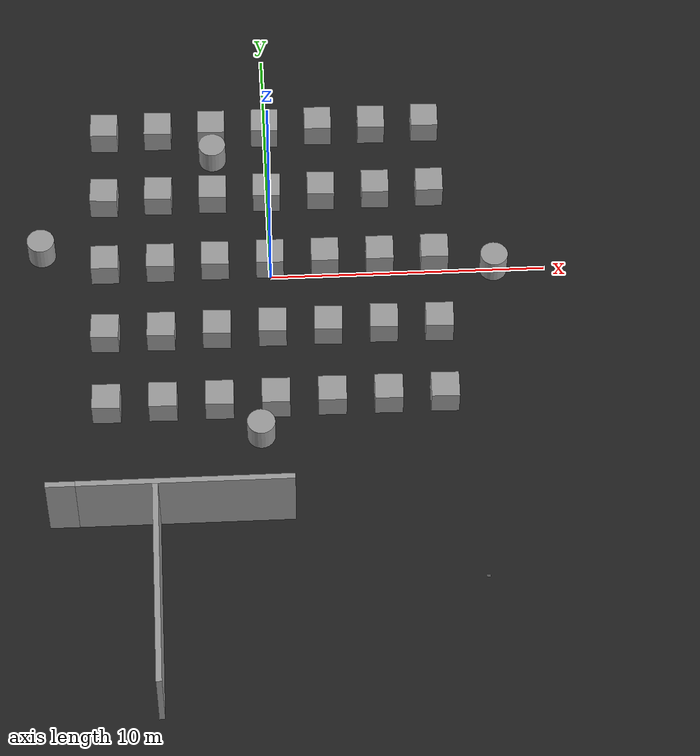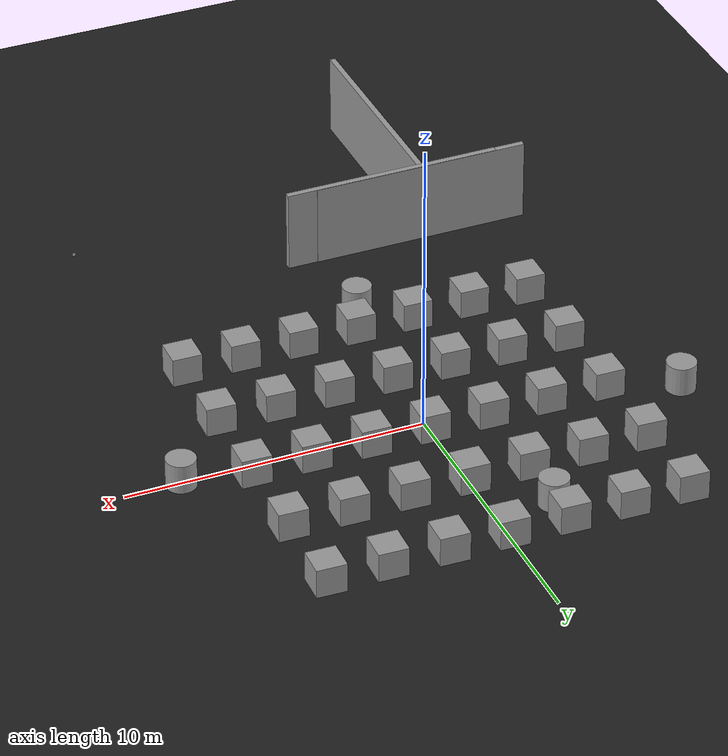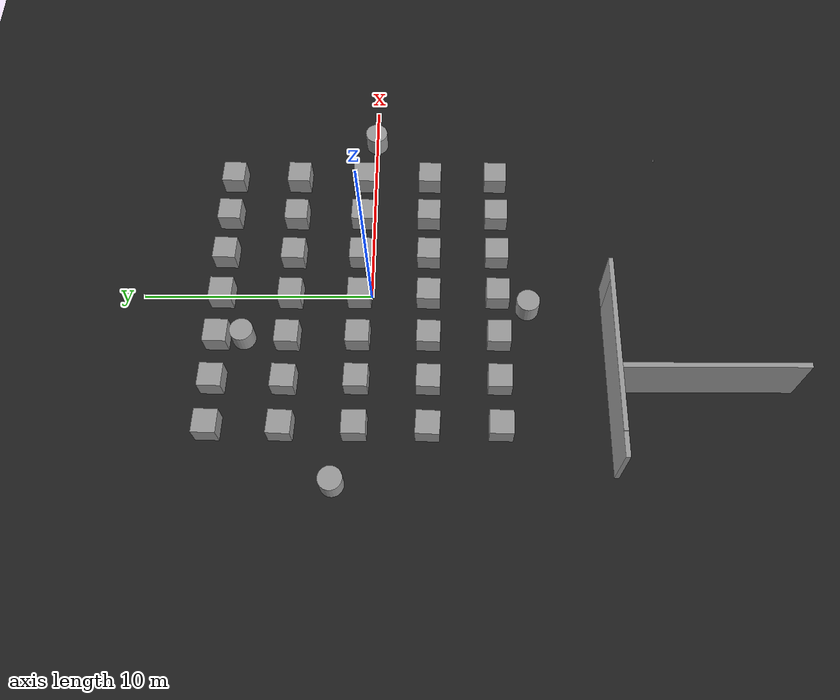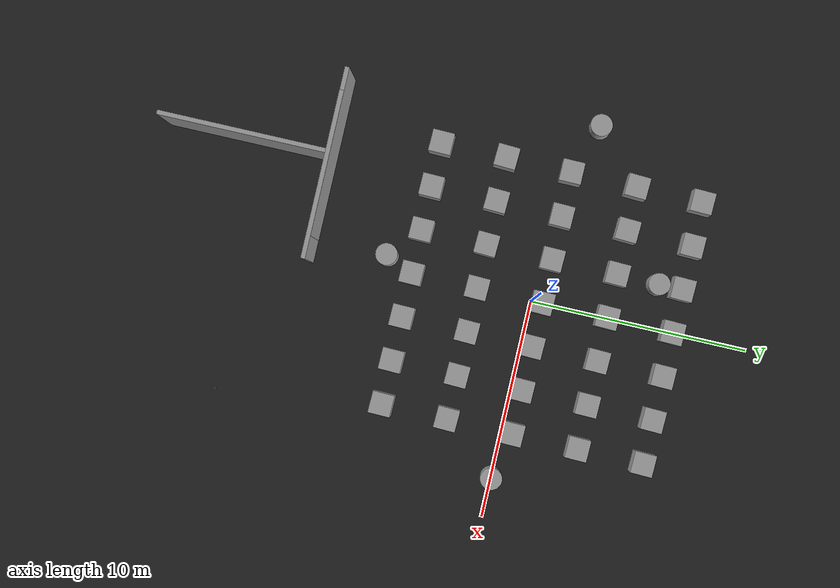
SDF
<sdf version="1.7">
 <world name="default">
  <light name="sun" type="directional">
   <cast_shadows>0</cast_shadows>
   <pose>0 0 20 0 -0 0</pose>
   <diffuse>0.8 0.8 0.8 1</diffuse>
   <specular>0.2 0.2 0.2 1</specular>
   <attenuation>
    <range>100</range>
    <constant>0.9</constant>
    <linear>0.01</linear>
    <quadratic>0.001</quadratic>
   </attenuation>
   <direction>-0.5 0.1 -0.9</direction>
   <spot><inner_angle>0</inner_angle><outer_angle>0</outer_angle><falloff>0</falloff></spot>
  </light>
  <model name="ground_plane">
   <static>1</static>
   <link name="link">
    <collision name="collision">
     <geometry><plane><normal>0 0 1</normal><size>100 100</size></plane></geometry>
     <surface><friction><ode><mu>100</mu><mu2>50</mu2></ode></friction></surface>
    </collision>
    <visual name="visual">
     <cast_shadows>0</cast_shadows>
     <geometry><plane><normal>0 0 1</normal><size>100 100</size></plane></geometry>
     <material>
      <script><uri>file://media/materials/scripts/gazebo.material</uri><name>Gazebo/BlackTransparent</name></script>
     </material>
    </visual>
   </link>
  </model>
  <gravity>0 0 -9.8</gravity>
  <magnetic_field>6e-06 2.3e-05 -4.2e-05</magnetic_field>
  <atmosphere type="adiabatic"/>
  <physics type="ode">
   <max_step_size>0.001</max_step_size>
   <real_time_factor>1</real_time_factor>
   <real_time_update_rate>1000</real_time_update_rate>
  </physics>
  <scene><ambient>0.4 0.4 0.4 1</ambient><background>0.7 0.7 0.7 1</background><shadows>0</shadows></scene>
  <spherical_coordinates>
   <surface_model>EARTH_WGS84</surface_model>
   <latitude_deg>0</latitude_deg>
   <longitude_deg>0</longitude_deg>
   <elevation>0</elevation>
   <heading_deg>0</heading_deg>
  </spherical_coordinates>
  <model name="table_8_9_10">
   <static>1</static>
   <link name="link">
    <pose>7 -12.9834 0.413567 3.14159 -1.57079 1.57079</pose>
    <inertial>
     <mass>0.39</mass>
     <inertia><ixx>0.00058</ixx><ixy>0</ixy><ixz>0</ixz><iyy>0.00058</iyy><iyz>0</iyz><izz>0.00019</izz></inertia>
    </inertial>
    <collision name="collision"><geometry><box><size>0.112 0.112 0.01</size></box></geometry></collision>
    <visual name="visual">
     <geometry><box><size>0.112 0.112 0.01</size></box></geometry>
     <material>
      <script>
       <uri>model://QR_Marker/materials/scripts</uri>
       <uri>model://QR_Marker/materials/textures</uri>
       <name>QR_Marker/qr_marker</name>
      </script>
     </material>
    </visual>
   </link>
  </model>
  <model name="unit_box">
   <pose>-6.01457 6.50784 0.499995 -1e-05 0 -0.028631</pose>
   <link name="link">
    <inertial>
     <mass>1</mass>
     <inertia>
      <ixx>0.166667</ixx>
      <ixy>0</ixy>
      <ixz>0</ixz>
      <iyy>0.166667</iyy>
      <iyz>0</iyz>
      <izz>0.166667</izz>
     </inertia>
    </inertial>
    <collision name="collision"><geometry><box><size>1 1 1</size></box></geometry></collision>
    <visual name="visual">
     <geometry><box><size>1 1 1</size></box></geometry>
     <material>
      <script><name>Gazebo/Grey</name><uri>file://media/materials/scripts/gazebo.material</uri></script>
     </material>
    </visual>
   </link>
  </model>
  <model name="unit_box_0">
   <pose>-6.04023 3.50706 0.499995 -1e-05 -0 -0.04818</pose>
   <link name="link">
    <inertial>
     <mass>1</mass>
     <inertia>
      <ixx>0.166667</ixx>
      <ixy>0</ixy>
      <ixz>0</ixz>
      <iyy>0.166667</iyy>
      <iyz>0</iyz>
      <izz>0.166667</izz>
     </inertia>
    </inertial>
    <collision name="collision"><geometry><box><size>1 1 1</size></box></geometry></collision>
    <visual name="visual">
     <geometry><box><size>1 1 1</size></box></geometry>
     <material>
      <script><name>Gazebo/Grey</name><uri>file://media/materials/scripts/gazebo.material</uri></script>
     </material>
    </visual>
   </link>
  </model>
  <model name="unit_box_1">
   <pose>-6.03195 0.49833 0.499995 0 -1e-05 -0.007554</pose>
   <link name="link">
    <inertial>
     <mass>1</mass>
     <inertia>
      <ixx>0.166667</ixx>
      <ixy>0</ixy>
      <ixz>0</ixz>
      <iyy>0.166667</iyy>
      <iyz>0</iyz>
      <izz>0.166667</izz>
     </inertia>
    </inertial>
    <collision name="collision"><geometry><box><size>1 1 1</size></box></geometry></collision>
    <visual name="visual">
     <geometry><box><size>1 1 1</size></box></geometry>
     <material>
      <script><name>Gazebo/Grey</name><uri>file://media/materials/scripts/gazebo.material</uri></script>
     </material>
    </visual>
   </link>
  </model>
  <model name="unit_box_2">
   <pose>-6.04016 -2.49948 0.499995 -1e-05 0 -0.047603</pose>
   <link name="link">
    <inertial>
     <mass>1</mass>
     <inertia>
      <ixx>0.166667</ixx>
      <ixy>0</ixy>
      <ixz>0</ixz>
      <iyy>0.166667</iyy>
      <iyz>0</iyz>
      <izz>0.166667</izz>
     </inertia>
    </inertial>
    <collision name="collision"><geometry><box><size>1 1 1</size></box></geometry></collision>
    <visual name="visual">
     <geometry><box><size>1 1 1</size></box></geometry>
     <material>
      <script><name>Gazebo/Grey</name><uri>file://media/materials/scripts/gazebo.material</uri></script>
     </material>
    </visual>
   </link>
  </model>
  <model name="unit_box_3">
   <pose>-6.01695 -5.49591 0.499995 -1e-05 0 -0.024662</pose>
   <link name="link">
    <inertial>
     <mass>1</mass>
     <inertia>
      <ixx>0.166667</ixx>
      <ixy>0</ixy>
      <ixz>0</ixz>
      <iyy>0.166667</iyy>
      <iyz>0</iyz>
      <izz>0.166667</izz>
     </inertia>
    </inertial>
    <collision name="collision"><geometry><box><size>1 1 1</size></box></geometry></collision>
    <visual name="visual">
     <geometry><box><size>1 1 1</size></box></geometry>
     <material>
      <script><name>Gazebo/Grey</name><uri>file://media/materials/scripts/gazebo.material</uri></script>
     </material>
    </visual>
   </link>
  </model>
  <model name="unit_box_4">
   <pose>-4.00809 6.51204 0.499995 -1e-05 -0 -0.029283</pose>
   <link name="link">
    <inertial>
     <mass>1</mass>
     <inertia>
      <ixx>0.166667</ixx>
      <ixy>0</ixy>
      <ixz>0</ixz>
      <iyy>0.166667</iyy>
      <iyz>0</iyz>
      <izz>0.166667</izz>
     </inertia>
    </inertial>
    <collision name="collision"><geometry><box><size>1 1 1</size></box></geometry></collision>
    <visual name="visual">
     <geometry><box><size>1 1 1</size></box></geometry>
     <material>
      <script><name>Gazebo/Grey</name><uri>file://media/materials/scripts/gazebo.material</uri></script>
     </material>
    </visual>
   </link>
  </model>
  <model name="unit_box_5">
   <pose>-2.00693 6.5157 0.499995 -1e-05 0 -0.029544</pose>
   <link name="link">
    <inertial>
     <mass>1</mass>
     <inertia>
      <ixx>0.166667</ixx>
      <ixy>0</ixy>
      <ixz>0</ixz>
      <iyy>0.166667</iyy>
      <iyz>0</iyz>
      <izz>0.166667</izz>
     </inertia>
    </inertial>
    <collision name="collision"><geometry><box><size>1 1 1</size></box></geometry></collision>
    <visual name="visual">
     <geometry><box><size>1 1 1</size></box></geometry>
     <material>
      <script><name>Gazebo/Grey</name><uri>file://media/materials/scripts/gazebo.material</uri></script>
     </material>
    </visual>
   </link>
  </model>
  <model name="unit_box_6">
   <pose>-0.006431 6.49747 0.499995 -1e-05 -0 -0.029612</pose>
   <link name="link">
    <inertial>
     <mass>1</mass>
     <inertia>
      <ixx>0.166667</ixx>
      <ixy>0</ixy>
      <ixz>0</ixz>
      <iyy>0.166667</iyy>
      <iyz>0</iyz>
      <izz>0.166667</izz>
     </inertia>
    </inertial>
    <collision name="collision"><geometry><box><size>1 1 1</size></box></geometry></collision>
    <visual name="visual">
     <geometry><box><size>1 1 1</size></box></geometry>
     <material>
      <script><name>Gazebo/Grey</name><uri>file://media/materials/scripts/gazebo.material</uri></script>
     </material>
    </visual>
   </link>
  </model>
  <model name="unit_box_7">
   <pose>1.99569 6.5184 0.499995 -1e-05 -0 -0.030058</pose>
   <link name="link">
    <inertial>
     <mass>1</mass>
     <inertia>
      <ixx>0.166667</ixx>
      <ixy>0</ixy>
      <ixz>0</ixz>
      <iyy>0.166667</iyy>
      <iyz>0</iyz>
      <izz>0.166667</izz>
     </inertia>
    </inertial>
    <collision name="collision"><geometry><box><size>1 1 1</size></box></geometry></collision>
    <visual name="visual">
     <geometry><box><size>1 1 1</size></box></geometry>
     <material>
      <script><name>Gazebo/Grey</name><uri>file://media/materials/scripts/gazebo.material</uri></script>
     </material>
    </visual>
   </link>
  </model>
  <model name="unit_box_8">
   <pose>3.99684 6.50303 0.499995 -1e-05 -0 -0.030579</pose>
   <link name="link">
    <inertial>
     <mass>1</mass>
     <inertia>
      <ixx>0.166667</ixx>
      <ixy>0</ixy>
      <ixz>0</ixz>
      <iyy>0.166667</iyy>
      <iyz>0</iyz>
      <izz>0.166667</izz>
     </inertia>
    </inertial>
    <collision name="collision"><geometry><box><size>1 1 1</size></box></geometry></collision>
    <visual name="visual">
     <geometry><box><size>1 1 1</size></box></geometry>
     <material>
      <script><name>Gazebo/Grey</name><uri>file://media/materials/scripts/gazebo.material</uri></script>
     </material>
    </visual>
   </link>
  </model>
  <model name="unit_box_9">
   <pose>5.99872 6.50465 0.499995 -1e-05 -0 -0.030275</pose>
   <link name="link">
    <inertial>
     <mass>1</mass>
     <inertia>
      <ixx>0.166667</ixx>
      <ixy>0</ixy>
      <ixz>0</ixz>
      <iyy>0.166667</iyy>
      <iyz>0</iyz>
      <izz>0.166667</izz>
     </inertia>
    </inertial>
    <collision name="collision"><geometry><box><size>1 1 1</size></box></geometry></collision>
    <visual name="visual">
     <geometry><box><size>1 1 1</size></box></geometry>
     <material>
      <script><name>Gazebo/Grey</name><uri>file://media/materials/scripts/gazebo.material</uri></script>
     </material>
    </visual>
   </link>
  </model>
  <model name="unit_box_10">
   <pose>-4.03641 3.51654 0.499995 -1e-05 -0 -0.047204</pose>
   <link name="link">
    <inertial>
     <mass>1</mass>
     <inertia>
      <ixx>0.166667</ixx>
      <ixy>0</ixy>
      <ixz>0</ixz>
      <iyy>0.166667</iyy>
      <iyz>0</iyz>
      <izz>0.166667</izz>
     </inertia>
    </inertial>
    <collision name="collision"><geometry><box><size>1 1 1</size></box></geometry></collision>
    <visual name="visual">
     <geometry><box><size>1 1 1</size></box></geometry>
     <material>
      <script><name>Gazebo/Grey</name><uri>file://media/materials/scripts/gazebo.material</uri></script>
     </material>
    </visual>
   </link>
  </model>
  <model name="unit_box_11">
   <pose>-2.02763 3.50565 0.499995 -1e-05 -0 -0.031895</pose>
   <link name="link">
    <inertial>
     <mass>1</mass>
     <inertia>
      <ixx>0.166667</ixx>
      <ixy>0</ixy>
      <ixz>0</ixz>
      <iyy>0.166667</iyy>
      <iyz>0</iyz>
      <izz>0.166667</izz>
     </inertia>
    </inertial>
    <collision name="collision"><geometry><box><size>1 1 1</size></box></geometry></collision>
    <visual name="visual">
     <geometry><box><size>1 1 1</size></box></geometry>
     <material>
      <script><name>Gazebo/Grey</name><uri>file://media/materials/scripts/gazebo.material</uri></script>
     </material>
    </visual>
   </link>
  </model>
  <model name="unit_box_12">
   <pose>-0.025936 3.50007 0.499995 -1e-05 -0 -0.032043</pose>
   <link name="link">
    <inertial>
     <mass>1</mass>
     <inertia>
      <ixx>0.166667</ixx>
      <ixy>0</ixy>
      <ixz>0</ixz>
      <iyy>0.166667</iyy>
      <iyz>0</iyz>
      <izz>0.166667</izz>
     </inertia>
    </inertial>
    <collision name="collision"><geometry><box><size>1 1 1</size></box></geometry></collision>
    <visual name="visual">
     <geometry><box><size>1 1 1</size></box></geometry>
     <material>
      <script><name>Gazebo/Grey</name><uri>file://media/materials/scripts/gazebo.material</uri></script>
     </material>
    </visual>
   </link>
  </model>
  <model name="unit_box_13">
   <pose>1.97868 3.49803 0.499995 -1e-05 -0 -0.033056</pose>
   <link name="link">
    <inertial>
     <mass>1</mass>
     <inertia>
      <ixx>0.166667</ixx>
      <ixy>0</ixy>
      <ixz>0</ixz>
      <iyy>0.166667</iyy>
      <iyz>0</iyz>
      <izz>0.166667</izz>
     </inertia>
    </inertial>
    <collision name="collision"><geometry><box><size>1 1 1</size></box></geometry></collision>
    <visual name="visual">
     <geometry><box><size>1 1 1</size></box></geometry>
     <material>
      <script><name>Gazebo/Grey</name><uri>file://media/materials/scripts/gazebo.material</uri></script>
     </material>
    </visual>
   </link>
  </model>
  <model name="unit_box_14">
   <pose>3.98761 3.49791 0.499995 -1e-05 -0 -0.021261</pose>
   <link name="link">
    <inertial>
     <mass>1</mass>
     <inertia>
      <ixx>0.166667</ixx>
      <ixy>0</ixy>
      <ixz>0</ixz>
      <iyy>0.166667</iyy>
      <iyz>0</iyz>
      <izz>0.166667</izz>
     </inertia>
    </inertial>
    <collision name="collision"><geometry><box><size>1 1 1</size></box></geometry></collision>
    <visual name="visual">
     <geometry><box><size>1 1 1</size></box></geometry>
     <material>
      <script><name>Gazebo/Grey</name><uri>file://media/materials/scripts/gazebo.material</uri></script>
     </material>
    </visual>
   </link>
  </model>
  <model name="unit_box_15">
   <pose>5.99411 3.49961 0.499995 -1e-05 -0 -0.027445</pose>
   <link name="link">
    <inertial>
     <mass>1</mass>
     <inertia>
      <ixx>0.166667</ixx>
      <ixy>0</ixy>
      <ixz>0</ixz>
      <iyy>0.166667</iyy>
      <iyz>0</iyz>
      <izz>0.166667</izz>
     </inertia>
    </inertial>
    <collision name="collision"><geometry><box><size>1 1 1</size></box></geometry></collision>
    <visual name="visual">
     <geometry><box><size>1 1 1</size></box></geometry>
     <material>
      <script><name>Gazebo/Grey</name><uri>file://media/materials/scripts/gazebo.material</uri></script>
     </material>
    </visual>
   </link>
  </model>
  <model name="unit_box_16">
   <pose>-4.00948 0.496843 0.499995 -1e-05 -0 -0.024916</pose>
   <link name="link">
    <inertial>
     <mass>1</mass>
     <inertia>
      <ixx>0.166667</ixx>
      <ixy>0</ixy>
      <ixz>0</ixz>
      <iyy>0.166667</iyy>
      <iyz>0</iyz>
      <izz>0.166667</izz>
     </inertia>
    </inertial>
    <collision name="collision"><geometry><box><size>1 1 1</size></box></geometry></collision>
    <visual name="visual">
     <geometry><box><size>1 1 1</size></box></geometry>
     <material>
      <script><name>Gazebo/Grey</name><uri>file://media/materials/scripts/gazebo.material</uri></script>
     </material>
    </visual>
   </link>
  </model>
  <model name="unit_box_17">
   <pose>-2.00746 0.514376 0.499995 0 -1e-05 -0.025078</pose>
   <link name="link">
    <inertial>
     <mass>1</mass>
     <inertia>
      <ixx>0.166667</ixx>
      <ixy>0</ixy>
      <ixz>0</ixz>
      <iyy>0.166667</iyy>
      <iyz>0</iyz>
      <izz>0.166667</izz>
     </inertia>
    </inertial>
    <collision name="collision"><geometry><box><size>1 1 1</size></box></geometry></collision>
    <visual name="visual">
     <geometry><box><size>1 1 1</size></box></geometry>
     <material>
      <script><name>Gazebo/Grey</name><uri>file://media/materials/scripts/gazebo.material</uri></script>
     </material>
    </visual>
   </link>
  </model>
  <model name="unit_box_18">
   <pose>-0.00679 0.511801 0.499995 -1e-05 -0 -0.025178</pose>
   <link name="link">
    <inertial>
     <mass>1</mass>
     <inertia>
      <ixx>0.166667</ixx>
      <ixy>0</ixy>
      <ixz>0</ixz>
      <iyy>0.166667</iyy>
      <iyz>0</iyz>
      <izz>0.166667</izz>
     </inertia>
    </inertial>
    <collision name="collision"><geometry><box><size>1 1 1</size></box></geometry></collision>
    <visual name="visual">
     <geometry><box><size>1 1 1</size></box></geometry>
     <material>
      <script><name>Gazebo/Grey</name><uri>file://media/materials/scripts/gazebo.material</uri></script>
     </material>
    </visual>
   </link>
  </model>
  <model name="unit_box_19">
   <pose>1.997 0.508718 0.499995 -1e-05 -0 -0.025928</pose>
   <link name="link">
    <inertial>
     <mass>1</mass>
     <inertia>
      <ixx>0.166667</ixx>
      <ixy>0</ixy>
      <ixz>0</ixz>
      <iyy>0.166667</iyy>
      <iyz>0</iyz>
      <izz>0.166667</izz>
     </inertia>
    </inertial>
    <collision name="collision"><geometry><box><size>1 1 1</size></box></geometry></collision>
    <visual name="visual">
     <geometry><box><size>1 1 1</size></box></geometry>
     <material>
      <script><name>Gazebo/Grey</name><uri>file://media/materials/scripts/gazebo.material</uri></script>
     </material>
    </visual>
   </link>
  </model>
  <model name="unit_box_20">
   <pose>3.99852 0.502376 0.499995 -1e-05 -0 -0.025427</pose>
   <link name="link">
    <inertial>
     <mass>1</mass>
     <inertia>
      <ixx>0.166667</ixx>
      <ixy>0</ixy>
      <ixz>0</ixz>
      <iyy>0.166667</iyy>
      <iyz>0</iyz>
      <izz>0.166667</izz>
     </inertia>
    </inertial>
    <collision name="collision"><geometry><box><size>1 1 1</size></box></geometry></collision>
    <visual name="visual">
     <geometry><box><size>1 1 1</size></box></geometry>
     <material>
      <script><name>Gazebo/Grey</name><uri>file://media/materials/scripts/gazebo.material</uri></script>
     </material>
    </visual>
   </link>
  </model>
  <model name="unit_box_21">
   <pose>5.99969 0.500077 0.499995 -1e-05 0 -0.025536</pose>
   <link name="link">
    <inertial>
     <mass>1</mass>
     <inertia>
      <ixx>0.166667</ixx>
      <ixy>0</ixy>
      <ixz>0</ixz>
      <iyy>0.166667</iyy>
      <iyz>0</iyz>
      <izz>0.166667</izz>
     </inertia>
    </inertial>
    <collision name="collision"><geometry><box><size>1 1 1</size></box></geometry></collision>
    <visual name="visual">
     <geometry><box><size>1 1 1</size></box></geometry>
     <material>
      <script><name>Gazebo/Grey</name><uri>file://media/materials/scripts/gazebo.material</uri></script>
     </material>
    </visual>
   </link>
  </model>
  <model name="unit_box_22">
   <pose>-4.02326 -2.50725 0.499995 1e-05 0 -0.042547</pose>
   <link name="link">
    <inertial>
     <mass>1</mass>
     <inertia>
      <ixx>0.166667</ixx>
      <ixy>0</ixy>
      <ixz>0</ixz>
      <iyy>0.166667</iyy>
      <iyz>0</iyz>
      <izz>0.166667</izz>
     </inertia>
    </inertial>
    <collision name="collision"><geometry><box><size>1 1 1</size></box></geometry></collision>
    <visual name="visual">
     <geometry><box><size>1 1 1</size></box></geometry>
     <material>
      <script><name>Gazebo/Grey</name><uri>file://media/materials/scripts/gazebo.material</uri></script>
     </material>
    </visual>
   </link>
  </model>
  <model name="unit_box_23">
   <pose>-2.02061 -2.50243 0.499995 -1e-05 -0 -0.042382</pose>
   <link name="link">
    <inertial>
     <mass>1</mass>
     <inertia>
      <ixx>0.166667</ixx>
      <ixy>0</ixy>
      <ixz>0</ixz>
      <iyy>0.166667</iyy>
      <iyz>0</iyz>
      <izz>0.166667</izz>
     </inertia>
    </inertial>
    <collision name="collision"><geometry><box><size>1 1 1</size></box></geometry></collision>
    <visual name="visual">
     <geometry><box><size>1 1 1</size></box></geometry>
     <material>
      <script><name>Gazebo/Grey</name><uri>file://media/materials/scripts/gazebo.material</uri></script>
     </material>
    </visual>
   </link>
  </model>
  <model name="unit_box_24">
   <pose>-0.012722 -2.48699 0.499995 -1e-05 0 -0.03107</pose>
   <link name="link">
    <inertial>
     <mass>1</mass>
     <inertia>
      <ixx>0.166667</ixx>
      <ixy>0</ixy>
      <ixz>0</ixz>
      <iyy>0.166667</iyy>
      <iyz>0</iyz>
      <izz>0.166667</izz>
     </inertia>
    </inertial>
    <collision name="collision"><geometry><box><size>1 1 1</size></box></geometry></collision>
    <visual name="visual">
     <geometry><box><size>1 1 1</size></box></geometry>
     <material>
      <script><name>Gazebo/Grey</name><uri>file://media/materials/scripts/gazebo.material</uri></script>
     </material>
    </visual>
   </link>
  </model>
  <model name="unit_box_25">
   <pose>1.99146 -2.49022 0.499995 -1e-05 0 -0.03457</pose>
   <link name="link">
    <inertial>
     <mass>1</mass>
     <inertia>
      <ixx>0.166667</ixx>
      <ixy>0</ixy>
      <ixz>0</ixz>
      <iyy>0.166667</iyy>
      <iyz>0</iyz>
      <izz>0.166667</izz>
     </inertia>
    </inertial>
    <collision name="collision"><geometry><box><size>1 1 1</size></box></geometry></collision>
    <visual name="visual">
     <geometry><box><size>1 1 1</size></box></geometry>
     <material>
      <script><name>Gazebo/Grey</name><uri>file://media/materials/scripts/gazebo.material</uri></script>
     </material>
    </visual>
   </link>
  </model>
  <model name="unit_box_26">
   <pose>3.99337 -2.48178 0.499995 -1e-05 -0 -0.0347</pose>
   <link name="link">
    <inertial>
     <mass>1</mass>
     <inertia>
      <ixx>0.166667</ixx>
      <ixy>0</ixy>
      <ixz>0</ixz>
      <iyy>0.166667</iyy>
      <iyz>0</iyz>
      <izz>0.166667</izz>
     </inertia>
    </inertial>
    <collision name="collision"><geometry><box><size>1 1 1</size></box></geometry></collision>
    <visual name="visual">
     <geometry><box><size>1 1 1</size></box></geometry>
     <material>
      <script><name>Gazebo/Grey</name><uri>file://media/materials/scripts/gazebo.material</uri></script>
     </material>
    </visual>
   </link>
  </model>
  <model name="unit_box_27">
   <pose>5.99482 -2.50698 0.499995 -1e-05 -0 -0.035375</pose>
   <link name="link">
    <inertial>
     <mass>1</mass>
     <inertia>
      <ixx>0.166667</ixx>
      <ixy>0</ixy>
      <ixz>0</ixz>
      <iyy>0.166667</iyy>
      <iyz>0</iyz>
      <izz>0.166667</izz>
     </inertia>
    </inertial>
    <collision name="collision"><geometry><box><size>1 1 1</size></box></geometry></collision>
    <visual name="visual">
     <geometry><box><size>1 1 1</size></box></geometry>
     <material>
      <script><name>Gazebo/Grey</name><uri>file://media/materials/scripts/gazebo.material</uri></script>
     </material>
    </visual>
   </link>
  </model>
  <model name="unit_box_28">
   <pose>-4.01044 -5.49395 0.499995 -1e-05 -0 -0.019734</pose>
   <link name="link">
    <inertial>
     <mass>1</mass>
     <inertia>
      <ixx>0.166667</ixx>
      <ixy>0</ixy>
      <ixz>0</ixz>
      <iyy>0.166667</iyy>
      <iyz>0</iyz>
      <izz>0.166667</izz>
     </inertia>
    </inertial>
    <collision name="collision"><geometry><box><size>1 1 1</size></box></geometry></collision>
    <visual name="visual">
     <geometry><box><size>1 1 1</size></box></geometry>
     <material>
      <script><name>Gazebo/Grey</name><uri>file://media/materials/scripts/gazebo.material</uri></script>
     </material>
    </visual>
   </link>
  </model>
  <model name="unit_box_29">
   <pose>-2.00685 -5.49704 0.499995 -1e-05 -0 -0.022503</pose>
   <link name="link">
    <inertial>
     <mass>1</mass>
     <inertia>
      <ixx>0.166667</ixx>
      <ixy>0</ixy>
      <ixz>0</ixz>
      <iyy>0.166667</iyy>
      <iyz>0</iyz>
      <izz>0.166667</izz>
     </inertia>
    </inertial>
    <collision name="collision"><geometry><box><size>1 1 1</size></box></geometry></collision>
    <visual name="visual">
     <geometry><box><size>1 1 1</size></box></geometry>
     <material>
      <script><name>Gazebo/Grey</name><uri>file://media/materials/scripts/gazebo.material</uri></script>
     </material>
    </visual>
   </link>
  </model>
  <model name="unit_box_30">
   <pose>-0.005242 -5.49193 0.499995 1e-05 0 -0.020671</pose>
   <link name="link">
    <inertial>
     <mass>1</mass>
     <inertia>
      <ixx>0.166667</ixx>
      <ixy>0</ixy>
      <ixz>0</ixz>
      <iyy>0.166667</iyy>
      <iyz>0</iyz>
      <izz>0.166667</izz>
     </inertia>
    </inertial>
    <collision name="collision"><geometry><box><size>1 1 1</size></box></geometry></collision>
    <visual name="visual">
     <geometry><box><size>1 1 1</size></box></geometry>
     <material>
      <script><name>Gazebo/Grey</name><uri>file://media/materials/scripts/gazebo.material</uri></script>
     </material>
    </visual>
   </link>
  </model>
  <model name="unit_box_31">
   <pose>1.99557 -5.48651 0.499995 -1e-05 -0 -0.021109</pose>
   <link name="link">
    <inertial>
     <mass>1</mass>
     <inertia>
      <ixx>0.166667</ixx>
      <ixy>0</ixy>
      <ixz>0</ixz>
      <iyy>0.166667</iyy>
      <iyz>0</iyz>
      <izz>0.166667</izz>
     </inertia>
    </inertial>
    <collision name="collision"><geometry><box><size>1 1 1</size></box></geometry></collision>
    <visual name="visual">
     <geometry><box><size>1 1 1</size></box></geometry>
     <material>
      <script><name>Gazebo/Grey</name><uri>file://media/materials/scripts/gazebo.material</uri></script>
     </material>
    </visual>
   </link>
  </model>
  <model name="unit_box_32">
   <pose>3.99637 -5.49751 0.499995 -1e-05 -0 -0.020979</pose>
   <link name="link">
    <inertial>
     <mass>1</mass>
     <inertia>
      <ixx>0.166667</ixx>
      <ixy>0</ixy>
      <ixz>0</ixz>
      <iyy>0.166667</iyy>
      <iyz>0</iyz>
      <izz>0.166667</izz>
     </inertia>
    </inertial>
    <collision name="collision"><geometry><box><size>1 1 1</size></box></geometry></collision>
    <visual name="visual">
     <geometry><box><size>1 1 1</size></box></geometry>
     <material>
      <script><name>Gazebo/Grey</name><uri>file://media/materials/scripts/gazebo.material</uri></script>
     </material>
    </visual>
   </link>
  </model>
  <model name="unit_box_33">
   <pose>5.99751 -5.50151 0.499995 0 -1e-05 -0.021423</pose>
   <link name="link">
    <inertial>
     <mass>1</mass>
     <inertia>
      <ixx>0.166667</ixx>
      <ixy>0</ixy>
      <ixz>0</ixz>
      <iyy>0.166667</iyy>
      <iyz>0</iyz>
      <izz>0.166667</izz>
     </inertia>
    </inertial>
    <collision name="collision"><geometry><box><size>1 1 1</size></box></geometry></collision>
    <visual name="visual">
     <geometry><box><size>1 1 1</size></box></geometry>
     <material>
      <script><name>Gazebo/Grey</name><uri>file://media/materials/scripts/gazebo.material</uri></script>
     </material>
    </visual>
   </link>
  </model>
  <model name="grey_wall">
   <static>1</static>
   <link name="link">
    <pose>0 0 1.4 0 -0 0</pose>
    <collision name="collision"><geometry><box><size>7.5 0.2 2.8</size></box></geometry></collision>
    <visual name="visual">
     <cast_shadows>0</cast_shadows>
     <geometry><box><size>7.5 0.2 2.8</size></box></geometry>
     <material>
      <script>
       <uri>model://grey_wall/materials/scripts</uri>
       <uri>model://grey_wall/materials/textures</uri>
       <name>vrc/grey_wall</name>
      </script>
     </material>
    </visual>
   </link>
   <pose>-4.27131 -13.9567 0 0 0 -1.57</pose>
  </model>
  <model name="grey_wall_clone">
   <static>1</static>
   <link name="link">
    <pose>0 0 1.4 0 -0 0</pose>
    <collision name="collision"><geometry><box><size>7.5 0.2 2.8</size></box></geometry></collision>
    <visual name="visual">
     <cast_shadows>0</cast_shadows>
     <geometry><box><size>7.5 0.2 2.8</size></box></geometry>
     <material>
      <script>
       <uri>model://grey_wall/materials/scripts</uri>
       <uri>model://grey_wall/materials/textures</uri>
       <name>vrc/grey_wall</name>
      </script>
     </material>
    </visual>
   </link>
   <pose>-3.23996 -10.1065 0 0 -0 0</pose>
  </model>
  <model name="grey_wall_clone_clone">
   <static>1</static>
   <link name="link">
    <pose>0 0 1.4 0 -0 0</pose>
    <collision name="collision"><geometry><box><size>7.5 0.2 2.8</size></box></geometry></collision>
    <visual name="visual">
     <cast_shadows>0</cast_shadows>
     <geometry><box><size>7.5 0.2 2.8</size></box></geometry>
     <material>
      <script>
       <uri>model://grey_wall/materials/scripts</uri>
       <uri>model://grey_wall/materials/textures</uri>
       <name>vrc/grey_wall</name>
      </script>
     </material>
    </visual>
   </link>
   <pose>-4.2715 -10.1 -0.01 0 -0 0</pose>
  </model>
  <model name="unit_cylinder">
   <pose>-8.35185 1.32141 0.499992 -3e-06 4e-06 0</pose>
   <link name="link">
    <inertial>
     <mass>1</mass>
     <inertia><ixx>0.145833</ixx><ixy>0</ixy><ixz>0</ixz><iyy>0.145833</iyy><iyz>0</iyz><izz>0.125</izz></inertia>
    </inertial>
    <collision name="collision">
     <geometry><cylinder><radius>0.5</radius><length>1</length></cylinder></geometry>
    </collision>
    <visual name="visual">
     <geometry><cylinder><radius>0.5</radius><length>1</length></cylinder></geometry>
     <material>
      <script><name>Gazebo/Grey</name><uri>file://media/materials/scripts/gazebo.material</uri></script>
     </material>
    </visual>
   </link>
  </model>
  <model name="unit_cylinder_0">
   <pose>-0.570049 -6.77282 0.499998 3e-06 -4e-06 0</pose>
   <link name="link">
    <inertial>
     <mass>1</mass>
     <inertia><ixx>0.145833</ixx><ixy>0</ixy><ixz>0</ixz><iyy>0.145833</iyy><iyz>0</iyz><izz>0.125</izz></inertia>
    </inertial>
    <collision name="collision">
     <geometry><cylinder><radius>0.5</radius><length>1</length></cylinder></geometry>
    </collision>
    <visual name="visual">
     <geometry><cylinder><radius>0.5</radius><length>1</length></cylinder></geometry>
     <material>
      <script><name>Gazebo/Grey</name><uri>file://media/materials/scripts/gazebo.material</uri></script>
     </material>
    </visual>
   </link>
  </model>
  <model name="unit_cylinder_1">
   <pose>8.15043 0.020886 0.499993 -3e-06 -3e-06 0</pose>
   <link name="link">
    <inertial>
     <mass>1</mass>
     <inertia><ixx>0.145833</ixx><ixy>0</ixy><ixz>0</ixz><iyy>0.145833</iyy><iyz>0</iyz><izz>0.125</izz></inertia>
    </inertial>
    <collision name="collision">
     <geometry><cylinder><radius>0.5</radius><length>1</length></cylinder></geometry>
    </collision>
    <visual name="visual">
     <geometry><cylinder><radius>0.5</radius><length>1</length></cylinder></geometry>
     <material>
      <script><name>Gazebo/Grey</name><uri>file://media/materials/scripts/gazebo.material</uri></script>
     </material>
    </visual>
   </link>
  </model>
  <model name="unit_cylinder_2">
   <pose>-1.98914 5.41774 0.499997 3e-06 4e-06 -0</pose>
   <link name="link">
    <inertial>
     <mass>1</mass>
     <inertia><ixx>0.145833</ixx><ixy>0</ixy><ixz>0</ixz><iyy>0.145833</iyy><iyz>0</iyz><izz>0.125</izz></inertia>
    </inertial>
    <collision name="collision">
     <geometry><cylinder><radius>0.5</radius><length>1</length></cylinder></geometry>
    </collision>
    <visual name="visual">
     <geometry><cylinder><radius>0.5</radius><length>1</length></cylinder></geometry>
     <material>
      <script><name>Gazebo/Grey</name><uri>file://media/materials/scripts/gazebo.material</uri></script>
     </material>
    </visual>
   </link>
  </model>
 </world>
</sdf>
